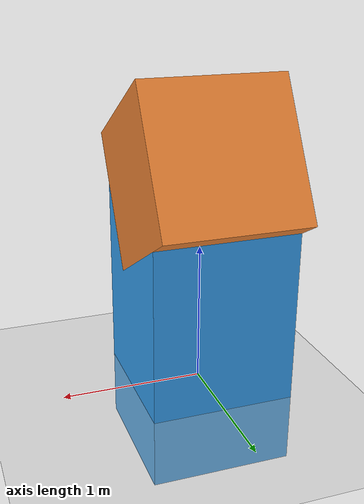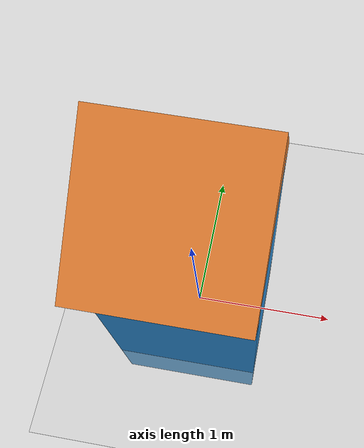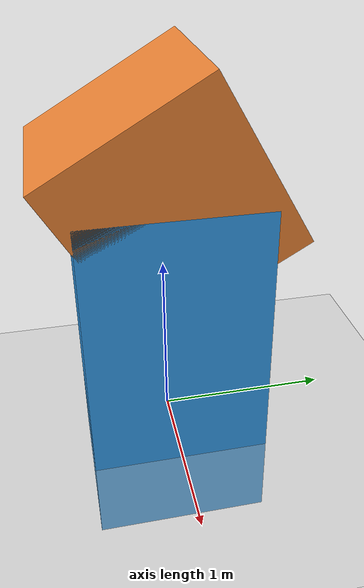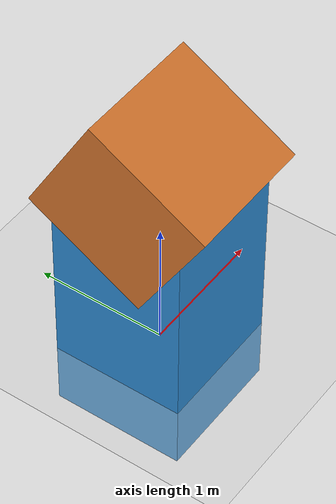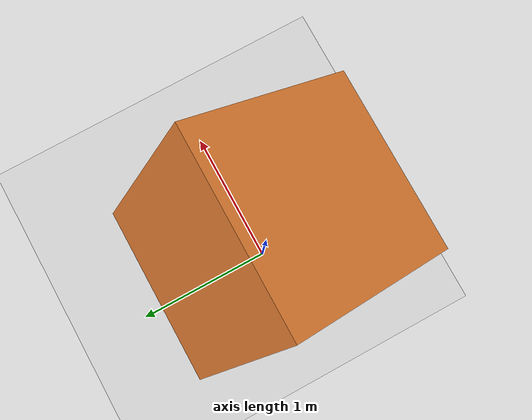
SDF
<?xml version="1.0" ?>
<sdf version="1.10">
   <world name="car_world">
      <physics name="1ms" type="ignored">
         <max_step_size>0.001</max_step_size>
         <real_time_factor>1.0</real_time_factor>
      </physics>
      <plugin
         filename="gz-sim-physics-system"
         name="gz::sim::systems::Physics">
      </plugin>
      <plugin
         filename="gz-sim-user-commands-system"
         name="gz::sim::systems::UserCommands">
      </plugin>
      <plugin
         filename="gz-sim-scene-broadcaster-system"
         name="gz::sim::systems::SceneBroadcaster">
      </plugin>
      <light type="directional" name="sun">
         <cast_shadows>true</cast_shadows>
         <pose>0 0 10 0 0 0</pose>
         <diffuse>0.8 0.8 0.8 1</diffuse>
         <specular>0.2 0.2 0.2 1</specular>
         <attenuation>
            <range>1000</range>
            <constant>0.9</constant>
            <linear>0.01</linear>
            <quadratic>0.001</quadratic>
         </attenuation>
         <direction>-0.5 0.1 -0.9</direction>
      </light>
      <model name="ground_plane">
         <static>true</static>
         <link name="link">
         <collision name="collision">
            <geometry>
               <plane>
                  <normal>0 0 1</normal>
               </plane>
            </geometry>
         </collision>
         <visual name="visual">
            <geometry>
               <plane>
                  <normal>0 0 1</normal>
                  <size>100 100</size>
               </plane>
            </geometry>
            <material>
               <ambient>0.8 0.8 0.8 1</ambient>
               <diffuse>0.8 0.8 0.8 1</diffuse>
               <specular>0.8 0.8 0.8 1</specular>
            </material>
         </visual>
         </link>
      </model>
      <model name='block' canonical_link='body'>
         <pose relative_to='world'>0 0 0.5 0 0 0</pose>
         <link name='body'>
            <inertial>
               <mass>5.0</mass>
               <inertia>
                  <ixx>0.8333</ixx>
                  <ixy>0</ixy>
                  <ixz>0</ixz>
                  <iyy>0.8333</iyy>
                  <iyz>0</iyz>
                  <izz>0.8333</izz>
               </inertia>
            </inertial>
            <visual name='visual'>
               <geometry>
                  <box>
                     <size>1 1 2</size>
                  </box>
               </geometry>
               <material>
                  <ambient>0.2 0.6 0.9 1</ambient>
                  <diffuse>0.2 0.6 0.9 1</diffuse>
                  <specular>0.1 0.1 0.1 1</specular>
               </material>
            </visual>
            <collision name='collision'>
               <geometry>
                  <box>
                     <size>1 1 1</size>
                  </box>
               </geometry>
            </collision>
         </link>
      </model>
      <model name='block_top' canonical_link='body'>
         <pose relative_to='world'>0 0 1.5 0.523599 0 0</pose>
         <link name='body'>
            <inertial>
               <mass>5.0</mass>
               <inertia>
                  <ixx>0.8333</ixx>
                  <ixy>0</ixy>
                  <ixz>0</ixz>
                  <iyy>0.8333</iyy>
                  <iyz>0</iyz>
                  <izz>0.8333</izz>
               </inertia>
            </inertial>
            <visual name='visual'>
               <geometry>
                  <box>
                     <size>1 1 1</size>
                  </box>
               </geometry>
               <material>
                  <ambient>0.9 0.5 0.2 1</ambient>
                  <diffuse>0.9 0.5 0.2 1</diffuse>
                  <specular>0.1 0.1 0.1 1</specular>
               </material>
            </visual>
            <collision name='collision'>
               <geometry>
                  <box>
                     <size>1 1 2</size>
                  </box>
               </geometry>
            </collision>
         </link>
      </model>
   </world>
</sdf>
